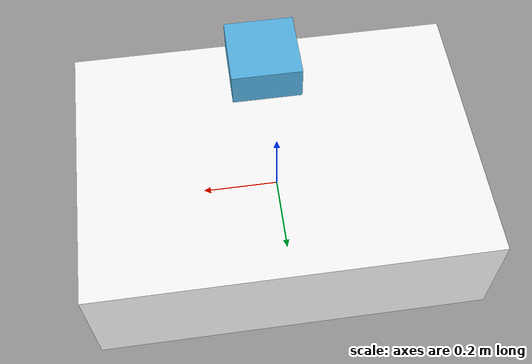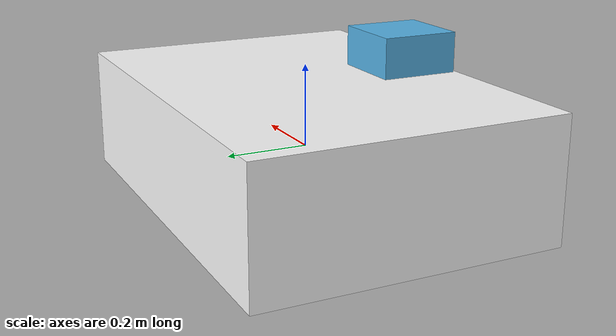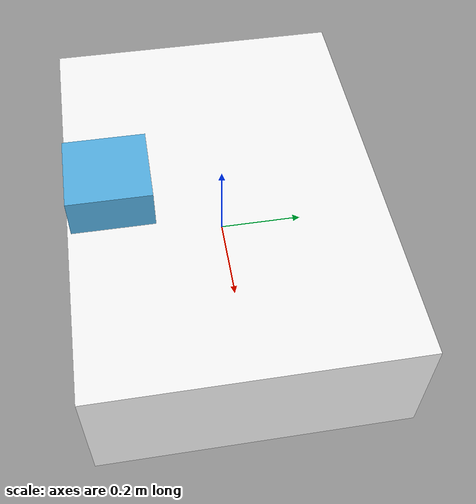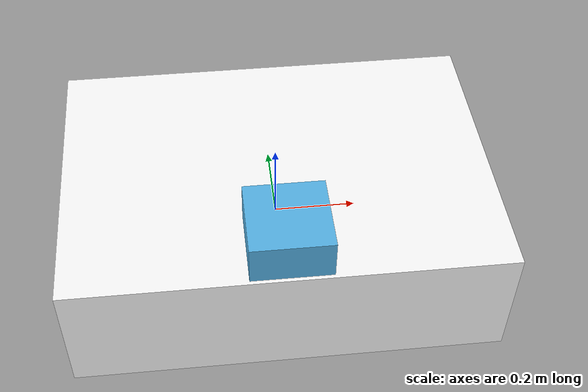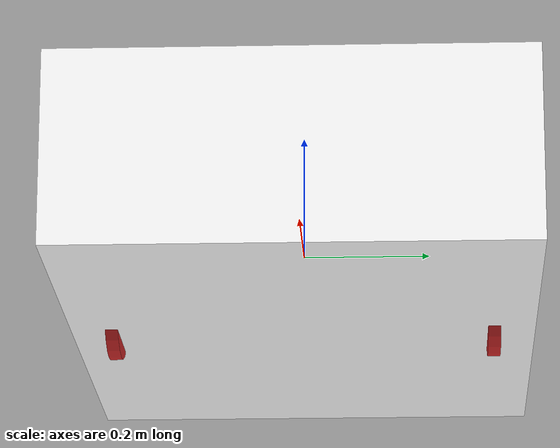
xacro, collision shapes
<?xml version="1.0" ?>
<robot name="ota" xmlns:xacro="http://www.ros.org/wiki/xacro">

  <!-- ROS2: find -> find-pkg-share -->
  <xacro:include filename="$(find mobile_manipulator_description)/urdf/ota/ota_macro.xacro"/>
     <!-- Simulation parameters -->
   <xacro:arg name="use_fake_hardware" default="false" />
   <xacro:arg name="sim_ignition" default="false" />
   <xacro:arg name="simulation_controllers" default="" />

   <xacro:property name="is_sim_ignition" value="$(arg sim_ignition)"/>
  <!-- instantiate rs005l -->
  <xacro:ota_macro
      base_link="ota_base_link"
      name="ota_system"
      sim_ignition="$(arg sim_ignition)"
      use_fake_hardware="$(arg use_fake_hardware)"
      generate_ros2_control_tag="true"/>

  <!-- World link -->

  <xacro:if value="$(arg sim_ignition)">
    <!-- Gazebo plugins -->
    <gazebo reference="world">
    </gazebo>
    <gazebo>
      <plugin filename="gz_ros2_control-system" name="gz_ros2_control::GazeboSimROS2ControlPlugin">
        <parameters>$(arg simulation_controllers)</parameters>
        <controller_manager_node_name>controller_manager</controller_manager_node_name>
      </plugin>
    </gazebo>
  </xacro:if>

</robot>

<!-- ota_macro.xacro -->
<robot name="ota_macros" xmlns:xacro="http://www.ros.org/wiki/xacro">
  <xacro:include filename="$(find mobile_manipulator_description)/urdf/ota/ota_base.xacro"/>
  <xacro:include filename="$(find mobile_manipulator_description)/urdf/ota/inertia_tensors.urdf.xacro"/>
  <xacro:include filename="$(find mobile_manipulator_description)/urdf/ota/ota_wheel.xacro"/>
  <xacro:include filename="$(find mobile_manipulator_description)/urdf/ota/ota_plugin.xacro"/>
  <xacro:include filename="$(find mobile_manipulator_description)/urdf/ota/ota_caster.xacro"/>
  <xacro:include filename="$(find mobile_manipulator_description)/urdf/ota/ota_ir.xacro"/>
  <xacro:macro name="ota_macro" params="
    base_link:=ota_base_link
    name
    use_fake_hardware:=false
    sim_ignition:=false
    generate_ros2_control_tag:=true
    ">
    <xacro:if value="${generate_ros2_control_tag}">
      <!-- ros2 control include -->
      <xacro:include filename="$(find mobile_manipulator_description)/urdf/ota/ota.ros2_control.xacro" />
      <!-- ros2 control instance -->
      <xacro:ota_ros2_control
        name="${name}"
        use_fake_hardware="${use_fake_hardware}"
        sim_ignition="${sim_ignition}"
      />
    </xacro:if>
    <!-- AGV gövdesi -->
    <xacro:ota_base link_name="${base_link}"/>

    <!-- IR sensör -->
    <xacro:ota_ir base_link="${base_link}" link_name="ota_ir" xyz_ir="0.403 0.0 0.03" rpy_ir="0 0 0"/>

    <!-- Tahrik tekerlekleri -->
    <xacro:ota_wheel base_link="${base_link}" xyz_hub="0 -0.30 -0.06" rpy_hub="0 0 0" side="left"/>
    <xacro:ota_wheel base_link="${base_link}" xyz_hub="0 0.30 -0.06" rpy_hub="0 0 0" side="right"/>

    <!-- Sarhoş tekerlekler -->
    <xacro:ota_swivel base_link="${base_link}" xyz_caster="0.37 -0.22 -0.048" rpy_caster="0 0 0" side="front_right"/>
    <xacro:ota_swivel base_link="${base_link}" xyz_caster="0.37 0.22 -0.048" rpy_caster="0 0 0" side="front_left"/>
    <xacro:ota_swivel base_link="${base_link}" xyz_caster="-0.37 -0.22 -0.048" rpy_caster="0 0 0" side="back_right"/>
    <xacro:ota_swivel base_link="${base_link}" xyz_caster="-0.37 0.22 -0.048" rpy_caster="0 0 0" side="back_left"/>

    <!-- Differential Drive Plugin (AGV hareketi için) -->
    <xacro:ota_diff_drive base_link="${base_link}"/>

    <!-- Joint State Publisher Plugin -->
    <xacro:ota_joints_state_publisher/>
  </xacro:macro>

</robot>

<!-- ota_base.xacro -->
<robot xmlns:xacro="http://ros.org/wiki/xacro">
  <xacro:macro name="ota_base" params="link_name">

    <link name='${link_name}'>
      <origin xyz="0 0 0" rpy=" 0 0 0"/>

      <visual>
        <origin xyz="-0.1 0 -0.1625" rpy=" 0 0 0"/>
        <geometry>
          <mesh filename="file:////home/cem/colcon_ws/src/mobile_manipulator_description/meshes/ota/OTA-v0.7.stl" scale="0.001 0.001 0.001"/>
        </geometry>
        <material name="DefaultWhite">
          <color rgba="1 1 1 1"/>
        </material>
      </visual>

      <collision>
        <origin xyz="0 0 0.015" rpy=" 0 0 0"/>
        <geometry>
          <box size="1.02605 0.728 0.3"/>
        </geometry>
      </collision>

      <!-- basit inertial (istersen box_inertial ile değiştirirsin) -->
      <xacro:box_inertial x="1.02605" y="0.728"  z="0.3" mass="50.0" />

    </link>

    <gazebo reference="${link_name}">
      <mu1>0.1</mu1>
      <mu2>0.1</mu2>
      <material>Gazebo/Orange</material>
      <visual>
        <material>
          <ambient>0.85 0.35 0 1</ambient>
          <diffuse>0.85 0.35 0 1</diffuse>
          <specular>0.1 0.1 0.1 1</specular>
        </material>
      </visual>
    </gazebo>

    <link name='manipulator_base_link'>
      <origin xyz="0 0 0" rpy=" 0 0 0"/>

      <visual>
        <origin xyz="0 0 -0.0" rpy=" 0 0 0"/>
        <geometry>
          <box size="0.187945 0.190701 0.103"/>
        </geometry>
      </visual>

      <collision>
        <origin xyz="0 0 -0.0" rpy=" 0 0 0"/>
        <geometry>
          <box size="0.187945 0.190701 0.103"/>
        </geometry>
      </collision>

      <xacro:box_inertial x="0.187945" y="0.190701"  z="0.103" mass="5.0" />
    </link>

    <joint name="base2manipulatorbase" type="fixed">
      <parent link="${link_name}"/>
      <child link="manipulator_base_link"/>
      <origin rpy="0 0 0" xyz="0.001 -0.26 0.212"/>
    </joint>

  </xacro:macro>
</robot>

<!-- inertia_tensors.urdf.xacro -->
<robot xmlns:xacro="http://ros.org/wiki/xacro">
  <!-- Plugin makrolarını dahil et (DiffDrive, JointStatePublisher) -->
  <xacro:include filename="$(find mobile_manipulator_description)/urdf/ota/ota_plugin.xacro"/>

  <!-- Inertia helper macros -->
  <property name="M_PI" value="3.1415926535897931" />

  <!-- see https://secure.wikimedia.org/wikipedia/en/wiki/List_of_moment_of_inertia_tensors -->

  <!-- #################### versions without origin #################### -->
  <xacro:macro name="sphere_inertial" params="radius mass">
    <inertial>
      <mass value="${mass}" />
      <origin xyz="0 0 0" />
      <inertia ixx="${0.4 * mass * radius * radius}" ixy="0.0" ixz="0.0"
        iyy="${0.4 * mass * radius * radius}" iyz="0.0"
        izz="${0.4 * mass * radius * radius}" />
    </inertial>
  </xacro:macro>

  <xacro:macro name="sphere_inertial_with_origin" params="radius mass *origin">
    <inertial>
      <mass value="${mass}" />
      <insert_block name="origin" />
      <inertia ixx="${0.4 * mass * radius * radius}" ixy="0.0" ixz="0.0"
        iyy="${0.4 * mass * radius * radius}" iyz="0.0"
        izz="${0.4 * mass * radius * radius}" />
    </inertial>
  </xacro:macro>

  <xacro:macro name="cylinder_inertial" params="radius length mass">
    <inertial>
      <mass value="${mass}" />
      <origin xyz="0 0 0" />
      <inertia ixx="${(1/12.0) * mass * (3 * radius * radius + length * length)}" ixy="0.0" ixz="0.0"
        iyy="${(1/12.0) * mass * (3 * radius * radius + length * length)}" iyz="0.0"
        izz="${0.5 * mass * radius * radius}" />
    </inertial>
  </xacro:macro>

  <xacro:macro name="cylinder_inertial_with_origin" params="radius length mass *origin">
    <inertial>
      <mass value="${mass}" />
      <insert_block name="origin" />
      <inertia ixx="${(1/12.0) * mass * (3 * radius * radius + length * length)}" ixy="0.0" ixz="0.0"
        iyy="${(1/12.0) * mass * (3 * radius * radius + length * length)}" iyz="0.0"
        izz="${0.5 * mass * radius * radius}" />
    </inertial>
  </xacro:macro>

  <xacro:macro name="box_inertial" params="x y z mass">
    <inertial>
      <mass value="${mass}" />
      <origin xyz="0 0 0" />
      <inertia ixx="${0.0833333 * mass * (y*y + z*z)}" ixy="0.0" ixz="0.0"
        iyy="${0.0833333 * mass * (x*x + z*z)}" iyz="0.0"
        izz="${0.0833333 * mass * (x*x + y*y)}" />
    </inertial>
  </xacro:macro>

  <xacro:macro name="box_inertial_with_origin" params="x y z mass *origin">
    <inertial>
      <mass value="${mass}" />
      <insert_block name="origin" />
      <inertia ixx="${0.0833333 * mass * (y*y + z*z)}" ixy="0.0" ixz="0.0"
        iyy="${0.0833333 * mass * (x*x + z*z)}" iyz="0.0"
        izz="${0.0833333 * mass * (x*x + y*y)}" />
    </inertial>
  </xacro:macro>
</robot>

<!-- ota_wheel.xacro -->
<robot xmlns:xacro="http://www.ros.org/wiki/xacro">

  <xacro:macro name="ota_wheel" params="base_link xyz_hub rpy_hub side">

    <!-- === WHEEL VISUAL === -->
    <link name="wheel_${side}_link">

      <visual>
        <origin xyz="0 0 0" rpy="0 0 1.570796"/>
        <geometry>
          <mesh filename="file:////home/cem/colcon_ws/src/mobile_manipulator_description/meshes/ota/AnaTeker.stl"
                scale="0.001 0.001 0.001"/>
        </geometry>
      </visual>

      <!-- === WHEEL COLLISION (simple cylinder) === -->
      <collision>
        <origin xyz="0 0 0" rpy="0 1.570796 1.570796"/>
        <geometry>
          <cylinder radius="0.102" length="0.02"/>
        </geometry>
      </collision>

      <!-- === WHEEL INERTIA === -->
      <xacro:cylinder_inertial radius="0.102" length="0.02" mass="5"/>
    </link>

    <!-- === WHEEL JOINT === -->
    <joint name="wheel_${side}_base" type="continuous">
      <origin xyz="${xyz_hub}" rpy="${rpy_hub}"/>
      <parent link="${base_link}"/>
      <child link="wheel_${side}_link"/>
      <axis xyz="0 1 0"/>
    </joint>

    <!-- Gazebo wheel parameters -->
    <gazebo reference="wheel_${side}_link">
      <mu1>1.0</mu1>
      <mu2>1.0</mu2>
      <kp>1000000.0</kp>
      <kd>10.0</kd>
      <minDepth>0.001</minDepth>
      <material>Gazebo/Red</material>
      <visual>
        <material>
          <ambient>1 0 0 1</ambient>
          <diffuse>1 0 0 1</diffuse>
          <specular>0.1 0.1 0.1 1</specular>
        </material>
      </visual>
    </gazebo>

  </xacro:macro>

</robot>

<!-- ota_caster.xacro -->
<robot xmlns:xacro="http://www.ros.org/wiki/xacro">
  <property name="M_PI" value="3.1415926535897931" />

  <xacro:macro name="ota_swivel" params="base_link xyz_caster rpy_caster side">

    <!-- CASTER BODY -->
    <link name='caster_${side}_link'>
      <visual>
        <origin xyz="0 0 0"/>
        <geometry>
          <mesh filename="file:////home/cem/colcon_ws/src/mobile_manipulator_description/meshes/ota/SarhosTeker.stl"
                scale="0.001 0.0008 0.001"/>
        </geometry>
      </visual>

      <collision>
        <origin xyz="0 0 0"/>
        <geometry>
          <cylinder radius="0.005" length="0.05"/>
        </geometry>
      </collision>

      <xacro:cylinder_inertial radius="0.005" length="0.07" mass="1" />
    </link>
    <joint name="caster_${side}_joint" type="fixed">
      <axis xyz="0 0 1"/>
      <origin xyz="${xyz_caster}" rpy="${rpy_caster}"/>
      <child link="caster_${side}_link"/>
      <parent link="${base_link}"/>
    </joint>

    <gazebo reference="caster_${side}_link">
      <mu1>1.0</mu1>
      <mu2>1.0</mu2>
      <kp>1000000.0</kp>
      <kd>10.0</kd>
      <minDepth>0.001</minDepth>
      <material>Gazebo/Red</material>
      <visual>
        <material>
          <ambient>1 0 0 1</ambient>
          <diffuse>1 0 0 1</diffuse>
          <specular>0.1 0.1 0.1 1</specular>
        </material>
      </visual>
    </gazebo>

  </xacro:macro>
</robot>

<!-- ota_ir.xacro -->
<robot xmlns:xacro="http://www.ros.org/wiki/xacro">

  <xacro:macro name="ota_ir" params="base_link link_name xyz_ir rpy_ir">

    <link name="${link_name}_link">

      <!-- Inertial -->
      <inertial>
        <mass value="0.001"/>
        <origin xyz="0 0 0"/>
        <inertia ixx="0.001666" iyy="0.001666" izz="0.001666"
                 ixy="0" ixz="0" iyz="0"/>
      </inertial>

      <!-- Visual -->
      <visual>
        <origin xyz="0 0 0"/>
        <geometry>
          <box size="0.02 0.02 0.02"/>
        </geometry>
      </visual>

      <!-- Collision -->
      <collision>
        <origin xyz="0 0 0"/>
        <geometry>
          <box size="0.02 0.02 0.02"/>
        </geometry>
      </collision>

      <!-- Gazebo sensor plugin (IR/Range) -->
      <gazebo reference="${link_name}_link">
        <sensor name="${link_name}_sensor" type="ray">
          <always_on>true</always_on>
          <update_rate>20</update_rate>
          <pose>-0.1 0 0 0 0 0</pose>
          <visualize>true</visualize>
        </sensor>
      </gazebo>

    </link>

    <joint name="${link_name}_joint" type="fixed">
      <origin xyz="${xyz_ir}" rpy="${rpy_ir}"/>
      <parent link="${base_link}"/>
      <child link="${link_name}_link"/>
    </joint>

  </xacro:macro>

</robot>
